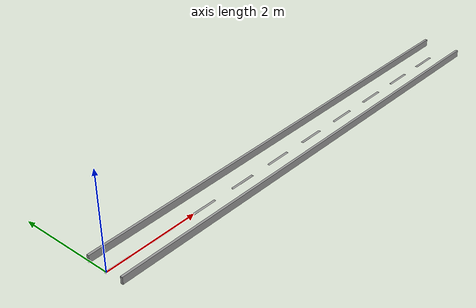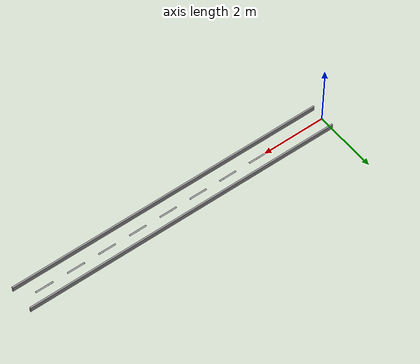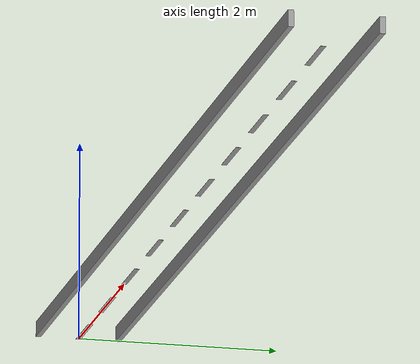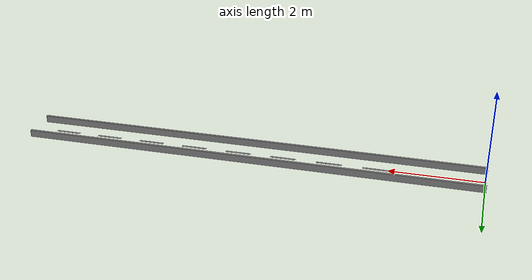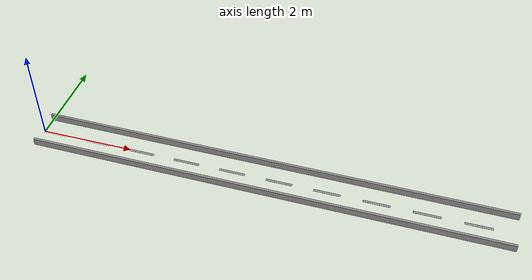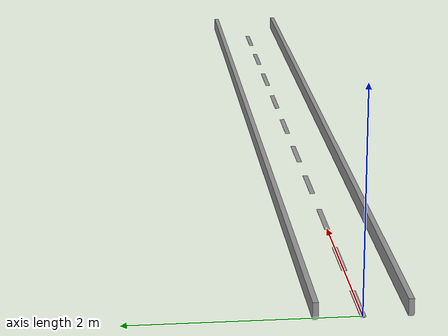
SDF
<?xml version='1.0'?>
<sdf version='1.7'>
  <model name='two_lanes'>
    <pose>4.975 0 0 0 -0 0</pose>
    <link name='Wall_0'>
      <collision name='Wall_0_Collision'>
        <geometry>
          <box>
            <size>10 0.05 0.15</size>
          </box>
        </geometry>
        <pose>0 0 0.075 0 -0 0</pose>
      </collision>
      <visual name='Wall_0_Visual'>
        <pose>0 0 0.075 0 -0 0</pose>
        <geometry>
          <box>
            <size>10 0.05 0.15</size>
          </box>
        </geometry>
        <material>
          <script>
            <uri>file://media/materials/scripts/gazebo.material</uri>
            <name>Gazebo/Grey</name>
          </script>
          <ambient>1 1 1 1</ambient>
        </material>
        <meta>
          <layer>0</layer>
        </meta>
      </visual>
      <pose>-0 -0.4 0 0 -0 0</pose>
    </link>
    <link name='Wall_12'>
      <collision name='Wall_12_Collision'>
        <geometry>
          <box>
            <size>0.55 0.05 0.001</size>
          </box>
        </geometry>
        <pose>0 0 0.0005 0 -0 0</pose>
      </collision>
      <visual name='Wall_12_Visual'>
        <pose>0 0 0.0005 0 -0 0</pose>
        <geometry>
          <box>
            <size>0.55 0.05 0.001</size>
          </box>
        </geometry>
        <material>
          <script>
            <uri>file://media/materials/scripts/gazebo.material</uri>
            <name>Gazebo/Grey</name>
          </script>
          <ambient>1 1 1 1</ambient>
        </material>
        <meta>
          <layer>0</layer>
        </meta>
      </visual>
      <pose>-1.725 0 0 0 -0 0</pose>
    </link>
    <link name='Wall_14'>
      <collision name='Wall_14_Collision'>
        <geometry>
          <box>
            <size>0.55 0.05 0.001</size>
          </box>
        </geometry>
        <pose>0 0 0.0005 0 -0 0</pose>
      </collision>
      <visual name='Wall_14_Visual'>
        <pose>0 0 0.0005 0 -0 0</pose>
        <geometry>
          <box>
            <size>0.55 0.05 0.001</size>
          </box>
        </geometry>
        <material>
          <script>
            <uri>file://media/materials/scripts/gazebo.material</uri>
            <name>Gazebo/Grey</name>
          </script>
          <ambient>1 1 1 1</ambient>
        </material>
        <meta>
          <layer>0</layer>
        </meta>
      </visual>
      <pose>-0.725 0 0 0 -0 0</pose>
    </link>
    <link name='Wall_16'>
      <collision name='Wall_16_Collision'>
        <geometry>
          <box>
            <size>0.55 0.05 0.001</size>
          </box>
        </geometry>
        <pose>0 0 0.0005 0 -0 0</pose>
      </collision>
      <visual name='Wall_16_Visual'>
        <pose>0 0 0.0005 0 -0 0</pose>
        <geometry>
          <box>
            <size>0.55 0.05 0.001</size>
          </box>
        </geometry>
        <material>
          <script>
            <uri>file://media/materials/scripts/gazebo.material</uri>
            <name>Gazebo/Grey</name>
          </script>
          <ambient>1 1 1 1</ambient>
        </material>
        <meta>
          <layer>0</layer>
        </meta>
      </visual>
      <pose>0.275 0 0 0 -0 0</pose>
    </link>
    <link name='Wall_18'>
      <collision name='Wall_18_Collision'>
        <geometry>
          <box>
            <size>0.55 0.05 0.001</size>
          </box>
        </geometry>
        <pose>0 0 0.0005 0 -0 0</pose>
      </collision>
      <visual name='Wall_18_Visual'>
        <pose>0 0 0.0005 0 -0 0</pose>
        <geometry>
          <box>
            <size>0.55 0.05 0.001</size>
          </box>
        </geometry>
        <material>
          <script>
            <uri>file://media/materials/scripts/gazebo.material</uri>
            <name>Gazebo/Grey</name>
          </script>
          <ambient>1 1 1 1</ambient>
        </material>
        <meta>
          <layer>0</layer>
        </meta>
      </visual>
      <pose>1.275 0 0 0 -0 0</pose>
    </link>
    <link name='Wall_2'>
      <collision name='Wall_2_Collision'>
        <geometry>
          <box>
            <size>10 0.05 0.15</size>
          </box>
        </geometry>
        <pose>0 0 0.075 0 -0 0</pose>
      </collision>
      <visual name='Wall_2_Visual'>
        <pose>0 0 0.075 0 -0 0</pose>
        <geometry>
          <box>
            <size>10 0.05 0.15</size>
          </box>
        </geometry>
        <material>
          <script>
            <uri>file://media/materials/scripts/gazebo.material</uri>
            <name>Gazebo/Grey</name>
          </script>
          <ambient>1 1 1 1</ambient>
        </material>
        <meta>
          <layer>0</layer>
        </meta>
      </visual>
      <pose>-0 0.4 0 0 -0 0</pose>
    </link>
    <link name='Wall_20'>
      <collision name='Wall_20_Collision'>
        <geometry>
          <box>
            <size>0.55 0.05 0.001</size>
          </box>
        </geometry>
        <pose>0 0 0.0005 0 -0 0</pose>
      </collision>
      <visual name='Wall_20_Visual'>
        <pose>0 0 0.0005 0 -0 0</pose>
        <geometry>
          <box>
            <size>0.55 0.05 0.001</size>
          </box>
        </geometry>
        <material>
          <script>
            <uri>file://media/materials/scripts/gazebo.material</uri>
            <name>Gazebo/Grey</name>
          </script>
          <ambient>1 1 1 1</ambient>
        </material>
        <meta>
          <layer>0</layer>
        </meta>
      </visual>
      <pose>2.275 0 0 0 -0 0</pose>
    </link>
    <link name='Wall_22'>
      <collision name='Wall_22_Collision'>
        <geometry>
          <box>
            <size>0.55 0.05 0.001</size>
          </box>
        </geometry>
        <pose>0 0 0.0005 0 -0 0</pose>
      </collision>
      <visual name='Wall_22_Visual'>
        <pose>0 0 0.0005 0 -0 0</pose>
        <geometry>
          <box>
            <size>0.55 0.05 0.001</size>
          </box>
        </geometry>
        <material>
          <script>
            <uri>file://media/materials/scripts/gazebo.material</uri>
            <name>Gazebo/Grey</name>
          </script>
          <ambient>1 1 1 1</ambient>
        </material>
        <meta>
          <layer>0</layer>
        </meta>
      </visual>
      <pose>3.275 0 0 0 -0 0</pose>
    </link>
    <link name='Wall_24'>
      <collision name='Wall_24_Collision'>
        <geometry>
          <box>
            <size>0.55 0.05 0.001</size>
          </box>
        </geometry>
        <pose>0 0 0.0005 0 -0 0</pose>
      </collision>
      <visual name='Wall_24_Visual'>
        <pose>0 0 0.0005 0 -0 0</pose>
        <geometry>
          <box>
            <size>0.55 0.05 0.001</size>
          </box>
        </geometry>
        <material>
          <script>
            <uri>file://media/materials/scripts/gazebo.material</uri>
            <name>Gazebo/Grey</name>
          </script>
          <ambient>1 1 1 1</ambient>
        </material>
        <meta>
          <layer>0</layer>
        </meta>
      </visual>
      <pose>4.275 0 0 0 -0 0</pose>
    </link>
    <link name='Wall_4'>
      <collision name='Wall_4_Collision'>
        <geometry>
          <box>
            <size>0.55 0.05 0.001</size>
          </box>
        </geometry>
        <pose>0 0 0.0005 0 -0 0</pose>
      </collision>
      <visual name='Wall_4_Visual'>
        <pose>0 0 0.0005 0 -0 0</pose>
        <geometry>
          <box>
            <size>0.55 0.05 0.001</size>
          </box>
        </geometry>
        <material>
          <script>
            <uri>file://media/materials/scripts/gazebo.material</uri>
            <name>Gazebo/Grey</name>
          </script>
          <ambient>1 1 1 1</ambient>
        </material>
        <meta>
          <layer>0</layer>
        </meta>
      </visual>
      <pose>-4.725 0 0 0 -0 0</pose>
    </link>
    <link name='Wall_6'>
      <collision name='Wall_6_Collision'>
        <geometry>
          <box>
            <size>0.55 0.05 0.001</size>
          </box>
        </geometry>
        <pose>0 0 0.0005 0 -0 0</pose>
      </collision>
      <visual name='Wall_6_Visual'>
        <pose>0 0 0.0005 0 -0 0</pose>
        <geometry>
          <box>
            <size>0.55 0.05 0.001</size>
          </box>
        </geometry>
        <material>
          <script>
            <uri>file://media/materials/scripts/gazebo.material</uri>
            <name>Gazebo/Grey</name>
          </script>
          <ambient>1 1 1 1</ambient>
        </material>
        <meta>
          <layer>0</layer>
        </meta>
      </visual>
      <pose>-3.725 0 0 0 -0 0</pose>
    </link>
    <link name='Wall_8'>
      <collision name='Wall_8_Collision'>
        <geometry>
          <box>
            <size>0.55 0.05 0.001</size>
          </box>
        </geometry>
        <pose>0 0 0.0005 0 -0 0</pose>
      </collision>
      <visual name='Wall_8_Visual'>
        <pose>0 0 0.0005 0 -0 0</pose>
        <geometry>
          <box>
            <size>0.55 0.05 0.001</size>
          </box>
        </geometry>
        <material>
          <script>
            <uri>file://media/materials/scripts/gazebo.material</uri>
            <name>Gazebo/Grey</name>
          </script>
          <ambient>1 1 1 1</ambient>
        </material>
        <meta>
          <layer>0</layer>
        </meta>
      </visual>
      <pose>-2.725 0 0 0 -0 0</pose>
    </link>
    <static>1</static>
  </model>
</sdf>
